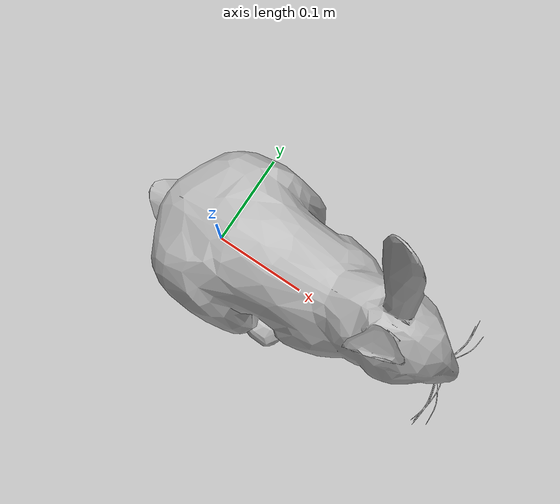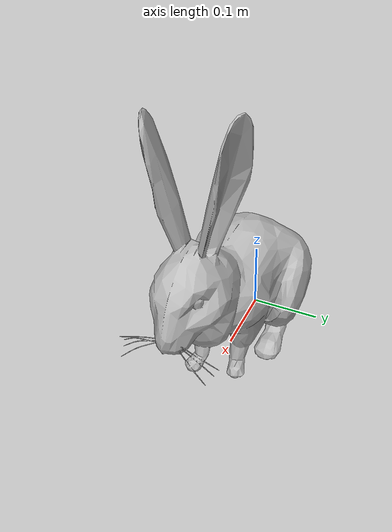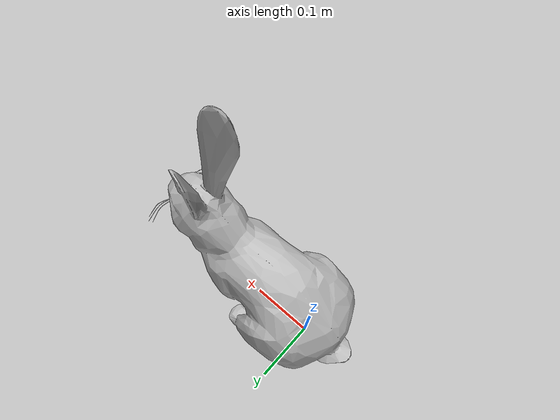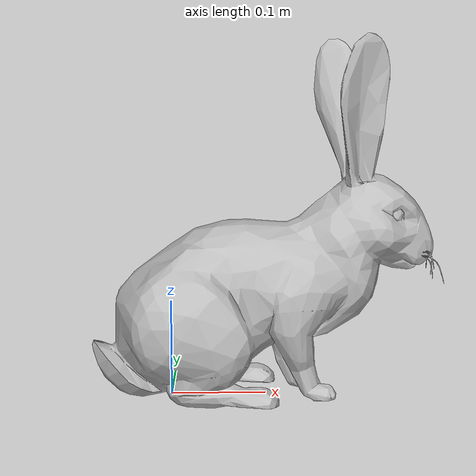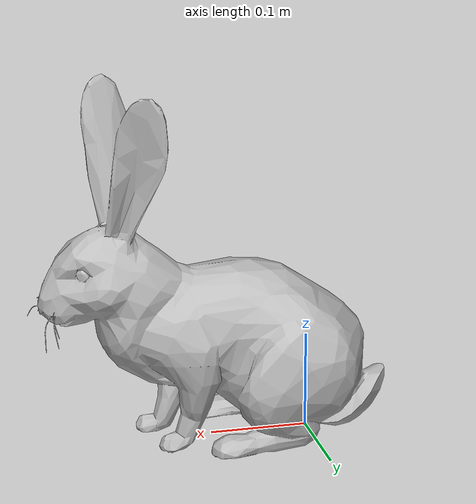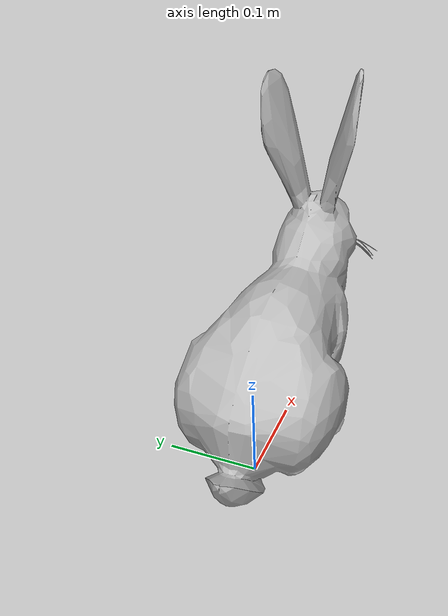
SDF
<?xml version="1.0" ?>
<sdf version="1.6">
  <model name="rabbit">
    <static>true</static>
    <link name="body">
      <pose>0 0 0 0 0 0</pose>
      <visual name="visual">
        <geometry>
          <mesh>
            <uri>model://rabbit/meshes/rabbit.obj</uri>
            <scale>1.5 1.5 1.5</scale>
          </mesh>
        </geometry>
      </visual>
      <collision name="collision">
        <geometry>
          <mesh>
            <uri>model://rabbit/meshes/rabbit.obj</uri>
            <scale>1.5 1.5 1.5</scale>
          </mesh>
        </geometry>
      </collision>
    </link>
  </model>
</sdf>
